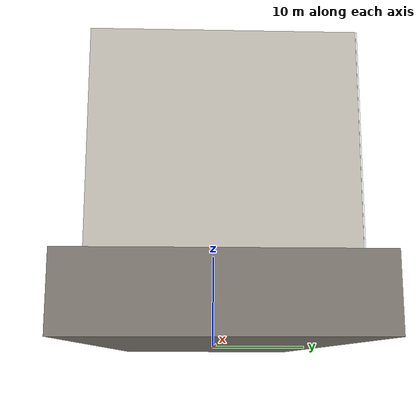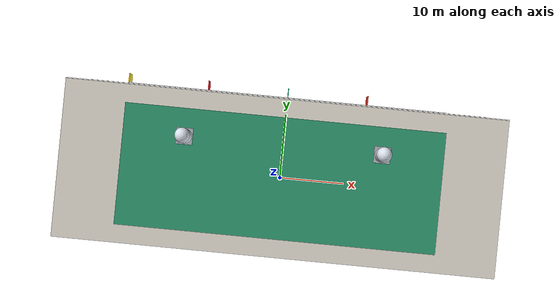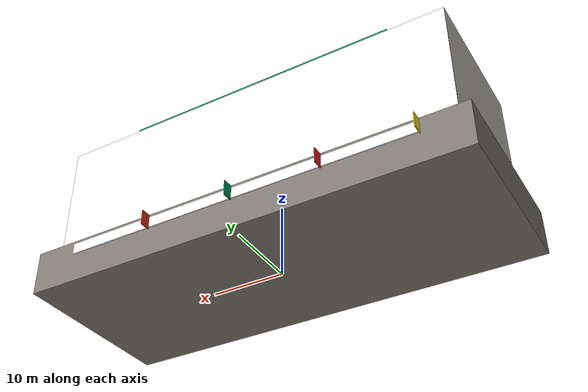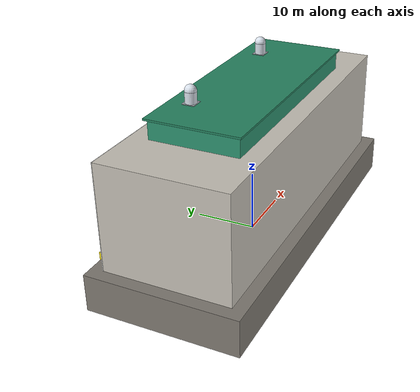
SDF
<?xml version="1.0" ?>
<sdf version="1.8">
  <model name="xinzhuang_street_block">
    <static>true</static>
    <link name="bldg_link">
      <collision name="podium_col">
        <pose>0 0 3.0 0 0 0</pose>
        <geometry><box><size>60.0 24.0 6.0</size></box></geometry>
      </collision>
      <collision name="tower_col">
        <pose>0 0 14.5 0 0 0</pose>
        <geometry><box><size>56.0 20.0 17.0</size></box></geometry>
      </collision>

      <!-- 1F 沿街騎樓基座 (Taiwanese Arcade Structure) -->
      <visual name="podium_base">
        <pose>0 0 3.0 0 0 0</pose>
        <geometry><box><size>60.0 24.0 6.0</size></box></geometry>
        <material>
          <ambient>0.42 0.40 0.38 1</ambient>
          <diffuse>0.50 0.48 0.45 1</diffuse>
        </material>
      </visual>

      <!-- 建築主體結構 (Building Main Structure) -->
      <visual name="tower_main">
        <pose>0 0 14.5 0 0 0</pose>
        <geometry><box><size>56.0 20.0 17.0</size></box></geometry>
        <material>
          <ambient>0.70 0.68 0.65 1</ambient>
          <diffuse>0.78 0.76 0.72 1</diffuse>
        </material>
      </visual>

      <!-- ==================== 新莊街老街 台灣特色連棟街屋高清擬真立面表皮 ==================== -->
      <!-- 包含：小籠包早餐店、光陽機車行、清心福全手搖飲、碳烤鹽酥雞、中醫診所、鐵窗、雨遮與冷氣室外機 -->
      <visual name="xinzhuang_old_street_facade_vis">
        <pose>0 10.06 11.5 0 0 0</pose>
        <geometry><box><size>56.0 0.10 23.0</size></box></geometry>
        <material>
          <diffuse>1 1 1 1</diffuse>
          <pbr>
            <metal>
              <albedo_map>model://xinzhuang_street_block/materials/textures/xinzhuang_old_street_facade.png</albedo_map>
              <roughness>0.42</roughness>
              <metalness>0.05</metalness>
            </metal>
          </pbr>
        </material>
      </visual>

      <!-- ==================== 新莊街老街 4 大特色名店發光橫式店招 (Exact 8:1 Ratio PBR Shop Signs) ==================== -->
      <!-- 店招 1：林記老麵手工小籠包 (12.0m x 1.5m, 比例 8:1 完全吻合 1200x150 貼圖) -->
      <visual name="shop1_fascia_xiaolongbao">
        <pose>-18.0 12.08 4.8 0 0 0</pose>
        <geometry><box><size>12.0 0.14 1.5</size></box></geometry>
        <material>
          <diffuse>1 1 1 1</diffuse>
          <emissive>0.45 0.45 0.45 1</emissive>
          <pbr>
            <metal>
              <albedo_map>model://xinzhuang_street_block/materials/textures/sign_xiaolongbao.png</albedo_map>
              <roughness>0.20</roughness>
              <metalness>0.05</metalness>
            </metal>
          </pbr>
        </material>
      </visual>

      <!-- 店招 2：KYMCO 光陽機車行 (12.0m x 1.5m, 比例 8:1 完全吻合 1200x150 貼圖) -->
      <visual name="shop2_fascia_kymco">
        <pose>-6.0 12.08 4.8 0 0 0</pose>
        <geometry><box><size>12.0 0.14 1.5</size></box></geometry>
        <material>
          <diffuse>1 1 1 1</diffuse>
          <emissive>0.45 0.45 0.45 1</emissive>
          <pbr>
            <metal>
              <albedo_map>model://xinzhuang_street_block/materials/textures/sign_kymco.png</albedo_map>
              <roughness>0.20</roughness>
              <metalness>0.05</metalness>
            </metal>
          </pbr>
        </material>
      </visual>

      <!-- 店招 3：清心福全手搖飲 (12.0m x 1.5m, 比例 8:1 完全吻合 1200x150 貼圖) -->
      <visual name="shop3_fascia_chingshin">
        <pose>6.0 12.08 4.8 0 0 0</pose>
        <geometry><box><size>12.0 0.14 1.5</size></box></geometry>
        <material>
          <diffuse>1 1 1 1</diffuse>
          <emissive>0.45 0.45 0.45 1</emissive>
          <pbr>
            <metal>
              <albedo_map>model://xinzhuang_street_block/materials/textures/sign_chingshin.png</albedo_map>
              <roughness>0.20</roughness>
              <metalness>0.05</metalness>
            </metal>
          </pbr>
        </material>
      </visual>

      <!-- 店招 4：台灣第一家碳烤鹽酥雞 (12.0m x 1.5m, 比例 8:1 完全吻合 1200x150 貼圖) -->
      <visual name="shop4_fascia_yansuji">
        <pose>18.0 12.08 4.8 0 0 0</pose>
        <geometry><box><size>12.0 0.14 1.5</size></box></geometry>
        <material>
          <diffuse>1 1 1 1</diffuse>
          <emissive>0.45 0.45 0.45 1</emissive>
          <pbr>
            <metal>
              <albedo_map>model://xinzhuang_street_block/materials/textures/sign_yansuji.png</albedo_map>
              <roughness>0.20</roughness>
              <metalness>0.05</metalness>
            </metal>
          </pbr>
        </material>
      </visual>

      <!-- ==================== 沿街側懸直立雙面發光店招 (Protruding Blade Signs) ==================== -->
      <!-- 店招 1：林記小籠包早餐店 (黃底紅字) -->
      <visual name="blade_sign_breakfast">
        <pose>-24.0 12.8 4.8 0 0 1.5708</pose>
        <geometry><box><size>1.4 0.12 2.0</size></box></geometry>
        <material>
          <ambient>0.95 0.85 0.1 1</ambient>
          <diffuse>1.0 0.9 0.1 1</diffuse>
          <emissive>0.7 0.6 0.05 1</emissive>
        </material>
      </visual>
      <!-- 店招 2：KYMCO 光陽機車行 (紅藍底白字) -->
      <visual name="blade_sign_kymco">
        <pose>-12.0 12.8 4.8 0 0 1.5708</pose>
        <geometry><box><size>1.4 0.12 2.0</size></box></geometry>
        <material>
          <ambient>0.9 0.1 0.15 1</ambient>
          <diffuse>0.95 0.15 0.18 1</diffuse>
          <emissive>0.7 0.1 0.1 1</emissive>
        </material>
      </visual>
      <!-- 店招 3：清心福全手搖飲 (經典翡翠綠) -->
      <visual name="blade_sign_tea">
        <pose>0.0 12.8 4.8 0 0 1.5708</pose>
        <geometry><box><size>1.4 0.12 2.0</size></box></geometry>
        <material>
          <ambient>0.0 0.55 0.35 1</ambient>
          <diffuse>0.0 0.65 0.4 1</diffuse>
          <emissive>0.0 0.6 0.35 1</emissive>
        </material>
      </visual>
      <!-- 店招 4：碳烤鹽酥雞 (大紅夜市招牌) -->
      <visual name="blade_sign_chicken">
        <pose>12.0 12.8 4.8 0 0 1.5708</pose>
        <geometry><box><size>1.4 0.12 2.0</size></box></geometry>
        <material>
          <ambient>0.88 0.15 0.1 1</ambient>
          <diffuse>0.95 0.2 0.12 1</diffuse>
          <emissive>0.7 0.15 0.08 1</emissive>
        </material>
      </visual>

      <!-- ==================== 台灣特色天際線：頂樓綠色鐵皮屋加蓋 (Turquoise Sheet Metal Penthouse) ==================== -->
      <visual name="rooftop_iron_house">
        <pose>0 0 24.5 0 0 0</pose>
        <geometry><box><size>38.0 14.0 3.0</size></box></geometry>
        <material>
          <ambient>0.12 0.48 0.36 1</ambient>
          <diffuse>0.18 0.58 0.44 1</diffuse>
          <pbr>
            <metal>
              <roughness>0.35</roughness>
              <metalness>0.7</metalness>
            </metal>
          </pbr>
        </material>
      </visual>
      <!-- 鐵皮屋斜坡浪板屋頂 (Sloped Metal Roof) -->
      <visual name="rooftop_iron_roof">
        <pose>0 0 26.15 0 0 0</pose>
        <geometry><box><size>39.0 14.8 0.3</size></box></geometry>
        <material>
          <ambient>0.10 0.42 0.32 1</ambient>
          <diffuse>0.15 0.52 0.38 1</diffuse>
          <pbr><metal><roughness>0.3</roughness><metalness>0.75</metalness></metal></pbr>
        </material>
      </visual>

      <!-- ==================== 台灣特色天際線：經典白鐵不鏽鋼水塔雙組 (Twin Stainless Steel Water Tanks) ==================== -->
      <!-- 水塔 1 -->
      <visual name="water_tank_1_stand">
        <pose>-12.0 4.0 26.2 0 0 0</pose>
        <geometry><box><size>2.0 2.0 0.4</size></box></geometry>
        <material><ambient>0.5 0.52 0.55 1</ambient><diffuse>0.6 0.62 0.65 1</diffuse></material>
      </visual>
      <visual name="water_tank_1_body">
        <pose>-12.0 4.0 27.3 0 0 0</pose>
        <geometry><cylinder><radius>0.9</radius><length>1.8</length></cylinder></geometry>
        <material>
          <ambient>0.75 0.78 0.82 1</ambient>
          <diffuse>0.85 0.88 0.92 1</diffuse>
          <pbr><metal><roughness>0.15</roughness><metalness>0.92</metalness></metal></pbr>
        </material>
      </visual>
      <visual name="water_tank_1_dome">
        <pose>-12.0 4.0 28.25 0 0 0</pose>
        <geometry><sphere><radius>0.92</radius></sphere></geometry>
        <material>
          <ambient>0.75 0.78 0.82 1</ambient>
          <diffuse>0.85 0.88 0.92 1</diffuse>
          <pbr><metal><roughness>0.15</roughness><metalness>0.92</metalness></metal></pbr>
        </material>
      </visual>

      <!-- 水塔 2 -->
      <visual name="water_tank_2_stand">
        <pose>12.0 4.0 26.2 0 0 0</pose>
        <geometry><box><size>2.0 2.0 0.4</size></box></geometry>
        <material><ambient>0.5 0.52 0.55 1</ambient><diffuse>0.6 0.62 0.65 1</diffuse></material>
      </visual>
      <visual name="water_tank_2_body">
        <pose>12.0 4.0 27.3 0 0 0</pose>
        <geometry><cylinder><radius>0.9</radius><length>1.8</length></cylinder></geometry>
        <material>
          <ambient>0.75 0.78 0.82 1</ambient>
          <diffuse>0.85 0.88 0.92 1</diffuse>
          <pbr><metal><roughness>0.15</roughness><metalness>0.92</metalness></metal></pbr>
        </material>
      </visual>
      <visual name="water_tank_2_dome">
        <pose>12.0 4.0 28.25 0 0 0</pose>
        <geometry><sphere><radius>0.92</radius></sphere></geometry>
        <material>
          <ambient>0.75 0.78 0.82 1</ambient>
          <diffuse>0.85 0.88 0.92 1</diffuse>
          <pbr><metal><roughness>0.15</roughness><metalness>0.92</metalness></metal></pbr>
        </material>
      </visual>

    </link>
  </model>
</sdf>
